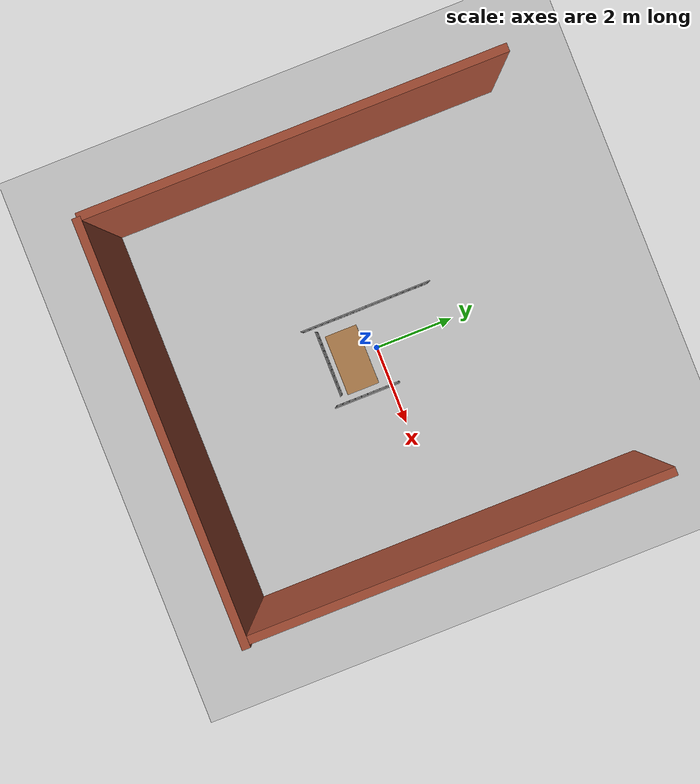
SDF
<sdf version="1.7">
 <world name="ufba_modificado">
  <model name="ground_plane">
   <static>1</static>
   <link name="link">
    <collision name="collision">
     <geometry><plane><normal>0 0 1</normal><size>100 100</size></plane></geometry>
     <surface>
      <contact><collide_bitmask>65535</collide_bitmask></contact>
      <friction><ode><mu>100</mu><mu2>50</mu2></ode></friction>
     </surface>
    </collision>
    <visual name="visual">
     <cast_shadows>0</cast_shadows>
     <geometry><plane><normal>0 0 1</normal><size>100 100</size></plane></geometry>
     <material>
      <script><uri>file://media/materials/scripts/gazebo.material</uri><name>Gazebo/Grey</name></script>
     </material>
    </visual>
   </link>
  </model>
  <model name="parede_sul">
   <static>1</static>
   <pose>0 -5 1.4 0 -0 0</pose>
   <link name="link">
    <collision name="collision"><geometry><box><size>10 0.2 2.8</size></box></geometry></collision>
    <visual name="visual">
     <geometry><box><size>10 0.2 2.8</size></box></geometry>
     <material>
      <script><uri>file://media/materials/scripts/gazebo.material</uri><name>Gazebo/Bricks</name></script>
     </material>
    </visual>
   </link>
  </model>
  <model name="parede_leste">
   <static>1</static>
   <pose>4.83525 0.034454 1.4 0 -0 1.5707</pose>
   <link name="link">
    <collision name="collision"><geometry><box><size>10 0.2 2.8</size></box></geometry></collision>
    <visual name="visual">
     <geometry><box><size>10 0.2 2.8</size></box></geometry>
     <material>
      <script><uri>file://media/materials/scripts/gazebo.material</uri><name>Gazebo/Bricks</name></script>
     </material>
    </visual>
   </link>
  </model>
  <model name="parede_oeste">
   <static>1</static>
   <pose>-4.99255 0.015266 1.4 0 -0 1.5707</pose>
   <link name="link">
    <collision name="collision"><geometry><box><size>10 0.2 2.8</size></box></geometry></collision>
    <visual name="visual">
     <geometry><box><size>10 0.2 2.8</size></box></geometry>
     <material>
      <script><uri>file://media/materials/scripts/gazebo.material</uri><name>Gazebo/Bricks</name></script>
     </material>
    </visual>
   </link>
  </model>
  <model name="mesa_escritorio_clone_clone">
   <static>1</static>
   <link name="link">
    <collision name="surface">
     <pose>0 0 1 0 -0 0</pose>
     <geometry><box><size>1.5 0.8 0.03</size></box></geometry>
     <surface><friction><ode><mu>0.6</mu><mu2>0.6</mu2></ode></friction></surface>
    </collision>
    <visual name="visual1">
     <pose>0 0 1 0 -0 0</pose>
     <geometry><box><size>1.5 0.8 0.03</size></box></geometry>
     <material>
      <script><uri>file://media/materials/scripts/gazebo.material</uri><name>Gazebo/Wood</name></script>
     </material>
    </visual>
    <collision name="front_left_leg">
     <pose>0.68 0.38 0.5 0 -0 0</pose>
     <geometry><cylinder><radius>0.02</radius><length>1</length></cylinder></geometry>
    </collision>
    <visual name="front_left_leg">
     <pose>0.68 0.38 0.5 0 -0 0</pose>
     <geometry><cylinder><radius>0.02</radius><length>1</length></cylinder></geometry>
     <material>
      <script><uri>file://media/materials/scripts/gazebo.material</uri><name>Gazebo/Grey</name></script>
     </material>
    </visual>
    <collision name="front_right_leg">
     <pose>0.68 -0.38 0.5 0 -0 0</pose>
     <geometry><cylinder><radius>0.02</radius><length>1</length></cylinder></geometry>
    </collision>
    <visual name="front_right_leg">
     <pose>0.68 -0.38 0.5 0 -0 0</pose>
     <geometry><cylinder><radius>0.02</radius><length>1</length></cylinder></geometry>
     <material>
      <script><uri>file://media/materials/scripts/gazebo.material</uri><name>Gazebo/Grey</name></script>
     </material>
    </visual>
    <collision name="back_right_leg">
     <pose>-0.68 -0.38 0.5 0 -0 0</pose>
     <geometry><cylinder><radius>0.02</radius><length>1</length></cylinder></geometry>
    </collision>
    <visual name="back_right_leg">
     <pose>-0.68 -0.38 0.5 0 -0 0</pose>
     <geometry><cylinder><radius>0.02</radius><length>1</length></cylinder></geometry>
     <material>
      <script><uri>file://media/materials/scripts/gazebo.material</uri><name>Gazebo/Grey</name></script>
     </material>
    </visual>
    <collision name="back_left_leg">
     <pose>-0.68 0.38 0.5 0 -0 0</pose>
     <geometry><cylinder><radius>0.02</radius><length>1</length></cylinder></geometry>
    </collision>
    <visual name="back_left_leg">
     <pose>-0.68 0.38 0.5 0 -0 0</pose>
     <geometry><cylinder><radius>0.02</radius><length>1</length></cylinder></geometry>
     <material>
      <script><uri>file://media/materials/scripts/gazebo.material</uri><name>Gazebo/Grey</name></script>
     </material>
    </visual>
   </link>
   <pose>0.045684 -0.657499 -0.24392 0 -0 0</pose>
  </model>
  <model name="pet_gate_wide">
   <static>1</static>
   <link name="link">
    <collision name="bar1_collision">
     <pose>0 0 0.381 0 -0 0</pose>
     <geometry><box><size>0.0254 0.0254 0.7366</size></box></geometry>
    </collision>
    <visual name="bar1_visual">
     <pose>0 0 0.381 0 -0 0</pose>
     <geometry><box><size>0.0254 0.0254 0.7366</size></box></geometry>
     <material>
      <script><uri>file://media/materials/scripts/gazebo.material</uri><name>Gazebo/Grey</name></script>
     </material>
    </visual>
    <collision name="bar2_collision">
     <pose>0.1651 0 0.381 0 -0 0</pose>
     <geometry><box><size>0.0254 0.0254 0.7366</size></box></geometry>
    </collision>
    <visual name="bar2_visual">
     <pose>0.1651 0 0.381 0 -0 0</pose>
     <geometry><box><size>0.0254 0.0254 0.7366</size></box></geometry>
     <material>
      <script><uri>file://media/materials/scripts/gazebo.material</uri><name>Gazebo/Grey</name></script>
     </material>
    </visual>
    <collision name="bar3_collision">
     <pose>0.3302 0 0.381 0 -0 0</pose>
     <geometry><box><size>0.0254 0.0254 0.7366</size></box></geometry>
    </collision>
    <visual name="bar3_visual">
     <pose>0.3302 0 0.381 0 -0 0</pose>
     <geometry><box><size>0.0254 0.0254 0.7366</size></box></geometry>
     <material>
      <script><uri>file://media/materials/scripts/gazebo.material</uri><name>Gazebo/Grey</name></script>
     </material>
    </visual>
    <collision name="bar4_collision">
     <pose>0.4953 0 0.381 0 -0 0</pose>
     <geometry><box><size>0.0254 0.0254 0.7366</size></box></geometry>
    </collision>
    <visual name="bar4_visual">
     <pose>0.4953 0 0.381 0 -0 0</pose>
     <geometry><box><size>0.0254 0.0254 0.7366</size></box></geometry>
     <material>
      <script><uri>file://media/materials/scripts/gazebo.material</uri><name>Gazebo/Grey</name></script>
     </material>
    </visual>
    <collision name="bar5_collision">
     <pose>0.6604 0 0.381 0 -0 0</pose>
     <geometry><box><size>0.0254 0.0254 0.7366</size></box></geometry>
    </collision>
    <visual name="bar5_visual">
     <pose>0.6604 0 0.381 0 -0 0</pose>
     <geometry><box><size>0.0254 0.0254 0.7366</size></box></geometry>
     <material>
      <script><uri>file://media/materials/scripts/gazebo.material</uri><name>Gazebo/Grey</name></script>
     </material>
    </visual>
    <collision name="bar6_collision">
     <pose>0.8255 0 0.381 0 -0 0</pose>
     <geometry><box><size>0.0254 0.0254 0.7366</size></box></geometry>
    </collision>
    <visual name="bar6_visual">
     <pose>0.8255 0 0.381 0 -0 0</pose>
     <geometry><box><size>0.0254 0.0254 0.7366</size></box></geometry>
     <material>
      <script><uri>file://media/materials/scripts/gazebo.material</uri><name>Gazebo/Grey</name></script>
     </material>
    </visual>
    <collision name="bar7_collision">
     <pose>0.9906 0 0.381 0 -0 0</pose>
     <geometry><box><size>0.0254 0.0254 0.7366</size></box></geometry>
    </collision>
    <visual name="bar7_visual">
     <pose>0.9906 0 0.381 0 -0 0</pose>
     <geometry><box><size>0.0254 0.0254 0.7366</size></box></geometry>
     <material>
      <script><uri>file://media/materials/scripts/gazebo.material</uri><name>Gazebo/Grey</name></script>
     </material>
    </visual>
    <collision name="bar8_collision">
     <pose>1.1557 0 0.381 0 -0 0</pose>
     <geometry><box><size>0.0254 0.0254 0.7366</size></box></geometry>
    </collision>
    <visual name="bar8_visual">
     <pose>1.1557 0 0.381 0 -0 0</pose>
     <geometry><box><size>0.0254 0.0254 0.7366</size></box></geometry>
     <material>
      <script><uri>file://media/materials/scripts/gazebo.material</uri><name>Gazebo/Grey</name></script>
     </material>
    </visual>
    <collision name="bar9_collision">
     <pose>1.3208 0 0.381 0 -0 0</pose>
     <geometry><box><size>0.0254 0.0254 0.7366</size></box></geometry>
    </collision>
    <visual name="bar9_visual">
     <pose>1.3208 0 0.381 0 -0 0</pose>
     <geometry><box><size>0.0254 0.0254 0.7366</size></box></geometry>
     <material>
      <script><uri>file://media/materials/scripts/gazebo.material</uri><name>Gazebo/Grey</name></script>
     </material>
    </visual>
    <collision name="bar10_collision">
     <pose>1.4859 0 0.381 0 -0 0</pose>
     <geometry><box><size>0.0254 0.0254 0.7366</size></box></geometry>
    </collision>
    <visual name="bar10_visual">
     <pose>1.4859 0 0.381 0 -0 0</pose>
     <geometry><box><size>0.0254 0.0254 0.7366</size></box></geometry>
     <material>
      <script><uri>file://media/materials/scripts/gazebo.material</uri><name>Gazebo/Grey</name></script>
     </material>
    </visual>
    <collision name="bar11_collision">
     <pose>1.651 0 0.381 0 -0 0</pose>
     <geometry><box><size>0.0254 0.0254 0.7366</size></box></geometry>
    </collision>
    <visual name="bar11_visual">
     <pose>1.651 0 0.381 0 -0 0</pose>
     <geometry><box><size>0.0254 0.0254 0.7366</size></box></geometry>
     <material>
      <script><uri>file://media/materials/scripts/gazebo.material</uri><name>Gazebo/Grey</name></script>
     </material>
    </visual>
    <collision name="top_rail_collision">
     <pose>0.8255 0 0.7493 0 -0 0</pose>
     <geometry><box><size>1.6764 0.0254 0.0254</size></box></geometry>
    </collision>
    <visual name="top_rail_visual">
     <pose>0.8255 0 0.7493 0 -0 0</pose>
     <geometry><box><size>1.6764 0.0254 0.0254</size></box></geometry>
     <material>
      <script><uri>file://media/materials/scripts/gazebo.material</uri><name>Gazebo/Grey</name></script>
     </material>
    </visual>
    <collision name="bottom_rail_collision">
     <pose>0.8255 0 0.0127 0 -0 0</pose>
     <geometry><box><size>1.6764 0.0254 0.0254</size></box></geometry>
    </collision>
    <visual name="bottom_rail_visual">
     <pose>0.8255 0 0.0127 0 -0 0</pose>
     <geometry><box><size>1.6764 0.0254 0.0254</size></box></geometry>
     <material>
      <script><uri>file://media/materials/scripts/gazebo.material</uri><name>Gazebo/Grey</name></script>
     </material>
    </visual>
   </link>
   <pose>-0.892488 -1.22979 0 0 -0 0</pose>
  </model>
  <model name="pet_gate_wide_clone">
   <static>1</static>
   <link name="link">
    <collision name="bar1_collision">
     <pose>0 0 0.381 0 -0 0</pose>
     <geometry><box><size>0.0254 0.0254 0.7366</size></box></geometry>
    </collision>
    <visual name="bar1_visual">
     <pose>0 0 0.381 0 -0 0</pose>
     <geometry><box><size>0.0254 0.0254 0.7366</size></box></geometry>
     <material>
      <script><uri>file://media/materials/scripts/gazebo.material</uri><name>Gazebo/Grey</name></script>
     </material>
    </visual>
    <collision name="bar2_collision">
     <pose>0.1651 0 0.381 0 -0 0</pose>
     <geometry><box><size>0.0254 0.0254 0.7366</size></box></geometry>
    </collision>
    <visual name="bar2_visual">
     <pose>0.1651 0 0.381 0 -0 0</pose>
     <geometry><box><size>0.0254 0.0254 0.7366</size></box></geometry>
     <material>
      <script><uri>file://media/materials/scripts/gazebo.material</uri><name>Gazebo/Grey</name></script>
     </material>
    </visual>
    <collision name="bar3_collision">
     <pose>0.3302 0 0.381 0 -0 0</pose>
     <geometry><box><size>0.0254 0.0254 0.7366</size></box></geometry>
    </collision>
    <visual name="bar3_visual">
     <pose>0.3302 0 0.381 0 -0 0</pose>
     <geometry><box><size>0.0254 0.0254 0.7366</size></box></geometry>
     <material>
      <script><uri>file://media/materials/scripts/gazebo.material</uri><name>Gazebo/Grey</name></script>
     </material>
    </visual>
    <collision name="bar4_collision">
     <pose>0.4953 0 0.381 0 -0 0</pose>
     <geometry><box><size>0.0254 0.0254 0.7366</size></box></geometry>
    </collision>
    <visual name="bar4_visual">
     <pose>0.4953 0 0.381 0 -0 0</pose>
     <geometry><box><size>0.0254 0.0254 0.7366</size></box></geometry>
     <material>
      <script><uri>file://media/materials/scripts/gazebo.material</uri><name>Gazebo/Grey</name></script>
     </material>
    </visual>
    <collision name="bar5_collision">
     <pose>0.6604 0 0.381 0 -0 0</pose>
     <geometry><box><size>0.0254 0.0254 0.7366</size></box></geometry>
    </collision>
    <visual name="bar5_visual">
     <pose>0.6604 0 0.381 0 -0 0</pose>
     <geometry><box><size>0.0254 0.0254 0.7366</size></box></geometry>
     <material>
      <script><uri>file://media/materials/scripts/gazebo.material</uri><name>Gazebo/Grey</name></script>
     </material>
    </visual>
    <collision name="bar6_collision">
     <pose>0.8255 0 0.381 0 -0 0</pose>
     <geometry><box><size>0.0254 0.0254 0.7366</size></box></geometry>
    </collision>
    <visual name="bar6_visual">
     <pose>0.8255 0 0.381 0 -0 0</pose>
     <geometry><box><size>0.0254 0.0254 0.7366</size></box></geometry>
     <material>
      <script><uri>file://media/materials/scripts/gazebo.material</uri><name>Gazebo/Grey</name></script>
     </material>
    </visual>
    <collision name="bar7_collision">
     <pose>0.9906 0 0.381 0 -0 0</pose>
     <geometry><box><size>0.0254 0.0254 0.7366</size></box></geometry>
    </collision>
    <visual name="bar7_visual">
     <pose>0.9906 0 0.381 0 -0 0</pose>
     <geometry><box><size>0.0254 0.0254 0.7366</size></box></geometry>
     <material>
      <script><uri>file://media/materials/scripts/gazebo.material</uri><name>Gazebo/Grey</name></script>
     </material>
    </visual>
    <collision name="bar8_collision">
     <pose>1.1557 0 0.381 0 -0 0</pose>
     <geometry><box><size>0.0254 0.0254 0.7366</size></box></geometry>
    </collision>
    <visual name="bar8_visual">
     <pose>1.1557 0 0.381 0 -0 0</pose>
     <geometry><box><size>0.0254 0.0254 0.7366</size></box></geometry>
     <material>
      <script><uri>file://media/materials/scripts/gazebo.material</uri><name>Gazebo/Grey</name></script>
     </material>
    </visual>
    <collision name="bar9_collision">
     <pose>1.3208 0 0.381 0 -0 0</pose>
     <geometry><box><size>0.0254 0.0254 0.7366</size></box></geometry>
    </collision>
    <visual name="bar9_visual">
     <pose>1.3208 0 0.381 0 -0 0</pose>
     <geometry><box><size>0.0254 0.0254 0.7366</size></box></geometry>
     <material>
      <script><uri>file://media/materials/scripts/gazebo.material</uri><name>Gazebo/Grey</name></script>
     </material>
    </visual>
    <collision name="bar10_collision">
     <pose>1.4859 0 0.381 0 -0 0</pose>
     <geometry><box><size>0.0254 0.0254 0.7366</size></box></geometry>
    </collision>
    <visual name="bar10_visual">
     <pose>1.4859 0 0.381 0 -0 0</pose>
     <geometry><box><size>0.0254 0.0254 0.7366</size></box></geometry>
     <material>
      <script><uri>file://media/materials/scripts/gazebo.material</uri><name>Gazebo/Grey</name></script>
     </material>
    </visual>
    <collision name="bar11_collision">
     <pose>1.651 0 0.381 0 -0 0</pose>
     <geometry><box><size>0.0254 0.0254 0.7366</size></box></geometry>
    </collision>
    <visual name="bar11_visual">
     <pose>1.651 0 0.381 0 -0 0</pose>
     <geometry><box><size>0.0254 0.0254 0.7366</size></box></geometry>
     <material>
      <script><uri>file://media/materials/scripts/gazebo.material</uri><name>Gazebo/Grey</name></script>
     </material>
    </visual>
    <collision name="top_rail_collision">
     <pose>0.8255 0 0.7493 0 -0 0</pose>
     <geometry><box><size>1.6764 0.0254 0.0254</size></box></geometry>
    </collision>
    <visual name="top_rail_visual">
     <pose>0.8255 0 0.7493 0 -0 0</pose>
     <geometry><box><size>1.6764 0.0254 0.0254</size></box></geometry>
     <material>
      <script><uri>file://media/materials/scripts/gazebo.material</uri><name>Gazebo/Grey</name></script>
     </material>
    </visual>
    <collision name="bottom_rail_collision">
     <pose>0.8255 0 0.0127 0 -0 0</pose>
     <geometry><box><size>1.6764 0.0254 0.0254</size></box></geometry>
    </collision>
    <visual name="bottom_rail_visual">
     <pose>0.8255 0 0.0127 0 -0 0</pose>
     <geometry><box><size>1.6764 0.0254 0.0254</size></box></geometry>
     <material>
      <script><uri>file://media/materials/scripts/gazebo.material</uri><name>Gazebo/Grey</name></script>
     </material>
    </visual>
   </link>
   <pose>0.983608 -1.44668 0 0 -0 1.57357</pose>
  </model>
  <model name="pet_gate_wide_clone_clone_0">
   <static>1</static>
   <link name="link">
    <collision name="bar1_collision">
     <pose>0 0 0.381 0 -0 0</pose>
     <geometry><box><size>0.0254 0.0254 0.7366</size></box></geometry>
    </collision>
    <visual name="bar1_visual">
     <pose>0 0 0.381 0 -0 0</pose>
     <geometry><box><size>0.0254 0.0254 0.7366</size></box></geometry>
     <material>
      <script><uri>file://media/materials/scripts/gazebo.material</uri><name>Gazebo/Grey</name></script>
     </material>
    </visual>
    <collision name="bar2_collision">
     <pose>0.1651 0 0.381 0 -0 0</pose>
     <geometry><box><size>0.0254 0.0254 0.7366</size></box></geometry>
    </collision>
    <visual name="bar2_visual">
     <pose>0.1651 0 0.381 0 -0 0</pose>
     <geometry><box><size>0.0254 0.0254 0.7366</size></box></geometry>
     <material>
      <script><uri>file://media/materials/scripts/gazebo.material</uri><name>Gazebo/Grey</name></script>
     </material>
    </visual>
    <collision name="bar3_collision">
     <pose>0.3302 0 0.381 0 -0 0</pose>
     <geometry><box><size>0.0254 0.0254 0.7366</size></box></geometry>
    </collision>
    <visual name="bar3_visual">
     <pose>0.3302 0 0.381 0 -0 0</pose>
     <geometry><box><size>0.0254 0.0254 0.7366</size></box></geometry>
     <material>
      <script><uri>file://media/materials/scripts/gazebo.material</uri><name>Gazebo/Grey</name></script>
     </material>
    </visual>
    <collision name="bar4_collision">
     <pose>0.4953 0 0.381 0 -0 0</pose>
     <geometry><box><size>0.0254 0.0254 0.7366</size></box></geometry>
    </collision>
    <visual name="bar4_visual">
     <pose>0.4953 0 0.381 0 -0 0</pose>
     <geometry><box><size>0.0254 0.0254 0.7366</size></box></geometry>
     <material>
      <script><uri>file://media/materials/scripts/gazebo.material</uri><name>Gazebo/Grey</name></script>
     </material>
    </visual>
    <collision name="bar5_collision">
     <pose>0.6604 0 0.381 0 -0 0</pose>
     <geometry><box><size>0.0254 0.0254 0.7366</size></box></geometry>
    </collision>
    <visual name="bar5_visual">
     <pose>0.6604 0 0.381 0 -0 0</pose>
     <geometry><box><size>0.0254 0.0254 0.7366</size></box></geometry>
     <material>
      <script><uri>file://media/materials/scripts/gazebo.material</uri><name>Gazebo/Grey</name></script>
     </material>
    </visual>
    <collision name="bar6_collision">
     <pose>0.8255 0 0.381 0 -0 0</pose>
     <geometry><box><size>0.0254 0.0254 0.7366</size></box></geometry>
    </collision>
    <visual name="bar6_visual">
     <pose>0.8255 0 0.381 0 -0 0</pose>
     <geometry><box><size>0.0254 0.0254 0.7366</size></box></geometry>
     <material>
      <script><uri>file://media/materials/scripts/gazebo.material</uri><name>Gazebo/Grey</name></script>
     </material>
    </visual>
    <collision name="bar7_collision">
     <pose>0.9906 0 0.381 0 -0 0</pose>
     <geometry><box><size>0.0254 0.0254 0.7366</size></box></geometry>
    </collision>
    <visual name="bar7_visual">
     <pose>0.9906 0 0.381 0 -0 0</pose>
     <geometry><box><size>0.0254 0.0254 0.7366</size></box></geometry>
     <material>
      <script><uri>file://media/materials/scripts/gazebo.material</uri><name>Gazebo/Grey</name></script>
     </material>
    </visual>
    <collision name="bar8_collision">
     <pose>1.1557 0 0.381 0 -0 0</pose>
     <geometry><box><size>0.0254 0.0254 0.7366</size></box></geometry>
    </collision>
    <visual name="bar8_visual">
     <pose>1.1557 0 0.381 0 -0 0</pose>
     <geometry><box><size>0.0254 0.0254 0.7366</size></box></geometry>
     <material>
      <script><uri>file://media/materials/scripts/gazebo.material</uri><name>Gazebo/Grey</name></script>
     </material>
    </visual>
    <collision name="bar9_collision">
     <pose>1.3208 0 0.381 0 -0 0</pose>
     <geometry><box><size>0.0254 0.0254 0.7366</size></box></geometry>
    </collision>
    <visual name="bar9_visual">
     <pose>1.3208 0 0.381 0 -0 0</pose>
     <geometry><box><size>0.0254 0.0254 0.7366</size></box></geometry>
     <material>
      <script><uri>file://media/materials/scripts/gazebo.material</uri><name>Gazebo/Grey</name></script>
     </material>
    </visual>
    <collision name="bar10_collision">
     <pose>1.4859 0 0.381 0 -0 0</pose>
     <geometry><box><size>0.0254 0.0254 0.7366</size></box></geometry>
    </collision>
    <visual name="bar10_visual">
     <pose>1.4859 0 0.381 0 -0 0</pose>
     <geometry><box><size>0.0254 0.0254 0.7366</size></box></geometry>
     <material>
      <script><uri>file://media/materials/scripts/gazebo.material</uri><name>Gazebo/Grey</name></script>
     </material>
    </visual>
    <collision name="bar11_collision">
     <pose>1.651 0 0.381 0 -0 0</pose>
     <geometry><box><size>0.0254 0.0254 0.7366</size></box></geometry>
    </collision>
    <visual name="bar11_visual">
     <pose>1.651 0 0.381 0 -0 0</pose>
     <geometry><box><size>0.0254 0.0254 0.7366</size></box></geometry>
     <material>
      <script><uri>file://media/materials/scripts/gazebo.material</uri><name>Gazebo/Grey</name></script>
     </material>
    </visual>
    <collision name="top_rail_collision">
     <pose>0.8255 0 0.7493 0 -0 0</pose>
     <geometry><box><size>1.6764 0.0254 0.0254</size></box></geometry>
    </collision>
    <visual name="top_rail_visual">
     <pose>0.8255 0 0.7493 0 -0 0</pose>
     <geometry><box><size>1.6764 0.0254 0.0254</size></box></geometry>
     <material>
      <script><uri>file://media/materials/scripts/gazebo.material</uri><name>Gazebo/Grey</name></script>
     </material>
    </visual>
    <collision name="bottom_rail_collision">
     <pose>0.8255 0 0.0127 0 -0 0</pose>
     <geometry><box><size>1.6764 0.0254 0.0254</size></box></geometry>
    </collision>
    <visual name="bottom_rail_visual">
     <pose>0.8255 0 0.0127 0 -0 0</pose>
     <geometry><box><size>1.6764 0.0254 0.0254</size></box></geometry>
     <material>
      <script><uri>file://media/materials/scripts/gazebo.material</uri><name>Gazebo/Grey</name></script>
     </material>
    </visual>
   </link>
   <pose>-1.0265 -1.54073 0 0 -0 1.57357</pose>
  </model>
  <model name="pet_gate_wide_clone_clone_0_clone">
   <static>1</static>
   <link name="link">
    <collision name="bar1_collision">
     <pose>0 0 0.381 0 -0 0</pose>
     <geometry><box><size>0.0254 0.0254 0.7366</size></box></geometry>
    </collision>
    <visual name="bar1_visual">
     <pose>0 0 0.381 0 -0 0</pose>
     <geometry><box><size>0.0254 0.0254 0.7366</size></box></geometry>
     <material>
      <script><uri>file://media/materials/scripts/gazebo.material</uri><name>Gazebo/Grey</name></script>
     </material>
    </visual>
    <collision name="bar2_collision">
     <pose>0.1651 0 0.381 0 -0 0</pose>
     <geometry><box><size>0.0254 0.0254 0.7366</size></box></geometry>
    </collision>
    <visual name="bar2_visual">
     <pose>0.1651 0 0.381 0 -0 0</pose>
     <geometry><box><size>0.0254 0.0254 0.7366</size></box></geometry>
     <material>
      <script><uri>file://media/materials/scripts/gazebo.material</uri><name>Gazebo/Grey</name></script>
     </material>
    </visual>
    <collision name="bar3_collision">
     <pose>0.3302 0 0.381 0 -0 0</pose>
     <geometry><box><size>0.0254 0.0254 0.7366</size></box></geometry>
    </collision>
    <visual name="bar3_visual">
     <pose>0.3302 0 0.381 0 -0 0</pose>
     <geometry><box><size>0.0254 0.0254 0.7366</size></box></geometry>
     <material>
      <script><uri>file://media/materials/scripts/gazebo.material</uri><name>Gazebo/Grey</name></script>
     </material>
    </visual>
    <collision name="bar4_collision">
     <pose>0.4953 0 0.381 0 -0 0</pose>
     <geometry><box><size>0.0254 0.0254 0.7366</size></box></geometry>
    </collision>
    <visual name="bar4_visual">
     <pose>0.4953 0 0.381 0 -0 0</pose>
     <geometry><box><size>0.0254 0.0254 0.7366</size></box></geometry>
     <material>
      <script><uri>file://media/materials/scripts/gazebo.material</uri><name>Gazebo/Grey</name></script>
     </material>
    </visual>
    <collision name="bar5_collision">
     <pose>0.6604 0 0.381 0 -0 0</pose>
     <geometry><box><size>0.0254 0.0254 0.7366</size></box></geometry>
    </collision>
    <visual name="bar5_visual">
     <pose>0.6604 0 0.381 0 -0 0</pose>
     <geometry><box><size>0.0254 0.0254 0.7366</size></box></geometry>
     <material>
      <script><uri>file://media/materials/scripts/gazebo.material</uri><name>Gazebo/Grey</name></script>
     </material>
    </visual>
    <collision name="bar6_collision">
     <pose>0.8255 0 0.381 0 -0 0</pose>
     <geometry><box><size>0.0254 0.0254 0.7366</size></box></geometry>
    </collision>
    <visual name="bar6_visual">
     <pose>0.8255 0 0.381 0 -0 0</pose>
     <geometry><box><size>0.0254 0.0254 0.7366</size></box></geometry>
     <material>
      <script><uri>file://media/materials/scripts/gazebo.material</uri><name>Gazebo/Grey</name></script>
     </material>
    </visual>
    <collision name="bar7_collision">
     <pose>0.9906 0 0.381 0 -0 0</pose>
     <geometry><box><size>0.0254 0.0254 0.7366</size></box></geometry>
    </collision>
    <visual name="bar7_visual">
     <pose>0.9906 0 0.381 0 -0 0</pose>
     <geometry><box><size>0.0254 0.0254 0.7366</size></box></geometry>
     <material>
      <script><uri>file://media/materials/scripts/gazebo.material</uri><name>Gazebo/Grey</name></script>
     </material>
    </visual>
    <collision name="bar8_collision">
     <pose>1.1557 0 0.381 0 -0 0</pose>
     <geometry><box><size>0.0254 0.0254 0.7366</size></box></geometry>
    </collision>
    <visual name="bar8_visual">
     <pose>1.1557 0 0.381 0 -0 0</pose>
     <geometry><box><size>0.0254 0.0254 0.7366</size></box></geometry>
     <material>
      <script><uri>file://media/materials/scripts/gazebo.material</uri><name>Gazebo/Grey</name></script>
     </material>
    </visual>
    <collision name="bar9_collision">
     <pose>1.3208 0 0.381 0 -0 0</pose>
     <geometry><box><size>0.0254 0.0254 0.7366</size></box></geometry>
    </collision>
    <visual name="bar9_visual">
     <pose>1.3208 0 0.381 0 -0 0</pose>
     <geometry><box><size>0.0254 0.0254 0.7366</size></box></geometry>
     <material>
      <script><uri>file://media/materials/scripts/gazebo.material</uri><name>Gazebo/Grey</name></script>
     </material>
    </visual>
    <collision name="bar10_collision">
     <pose>1.4859 0 0.381 0 -0 0</pose>
     <geometry><box><size>0.0254 0.0254 0.7366</size></box></geometry>
    </collision>
    <visual name="bar10_visual">
     <pose>1.4859 0 0.381 0 -0 0</pose>
     <geometry><box><size>0.0254 0.0254 0.7366</size></box></geometry>
     <material>
      <script><uri>file://media/materials/scripts/gazebo.material</uri><name>Gazebo/Grey</name></script>
     </material>
    </visual>
    <collision name="bar11_collision">
     <pose>1.651 0 0.381 0 -0 0</pose>
     <geometry><box><size>0.0254 0.0254 0.7366</size></box></geometry>
    </collision>
    <visual name="bar11_visual">
     <pose>1.651 0 0.381 0 -0 0</pose>
     <geometry><box><size>0.0254 0.0254 0.7366</size></box></geometry>
     <material>
      <script><uri>file://media/materials/scripts/gazebo.material</uri><name>Gazebo/Grey</name></script>
     </material>
    </visual>
    <collision name="top_rail_collision">
     <pose>0.8255 0 0.7493 0 -0 0</pose>
     <geometry><box><size>1.6764 0.0254 0.0254</size></box></geometry>
    </collision>
    <visual name="top_rail_visual">
     <pose>0.8255 0 0.7493 0 -0 0</pose>
     <geometry><box><size>1.6764 0.0254 0.0254</size></box></geometry>
     <material>
      <script><uri>file://media/materials/scripts/gazebo.material</uri><name>Gazebo/Grey</name></script>
     </material>
    </visual>
    <collision name="bottom_rail_collision">
     <pose>0.8255 0 0.0127 0 -0 0</pose>
     <geometry><box><size>1.6764 0.0254 0.0254</size></box></geometry>
    </collision>
    <visual name="bottom_rail_visual">
     <pose>0.8255 0 0.0127 0 -0 0</pose>
     <geometry><box><size>1.6764 0.0254 0.0254</size></box></geometry>
     <material>
      <script><uri>file://media/materials/scripts/gazebo.material</uri><name>Gazebo/Grey</name></script>
     </material>
    </visual>
   </link>
   <pose>-1.03345 0.117248 0 0 -0 1.57357</pose>
  </model>
 </world>
</sdf>
